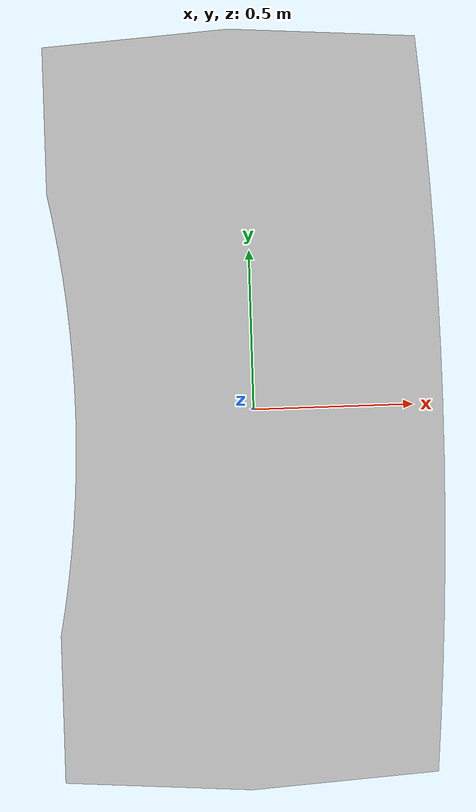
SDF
<?xml version='1.0'?>
<sdf version='1.4'>
  <model name='533'>
    <pose>0 0 0 0 0 0</pose>
    <static>true</static>
    <link name='link'>
      <collision name='collision'>
        <pose>0 0 0 0 0 0</pose>
        <geometry>
          <box>
            <size>0.92 1.80004 2</size>
          </box>
        </geometry>
      </collision>
      <visual name='visual'>
        <pose>0 0 0 0 0 0</pose>
        <geometry>
          <mesh><uri>model://533/533.dae</uri></mesh>
        </geometry>
      </visual>
    </link>
  </model>
</sdf>
